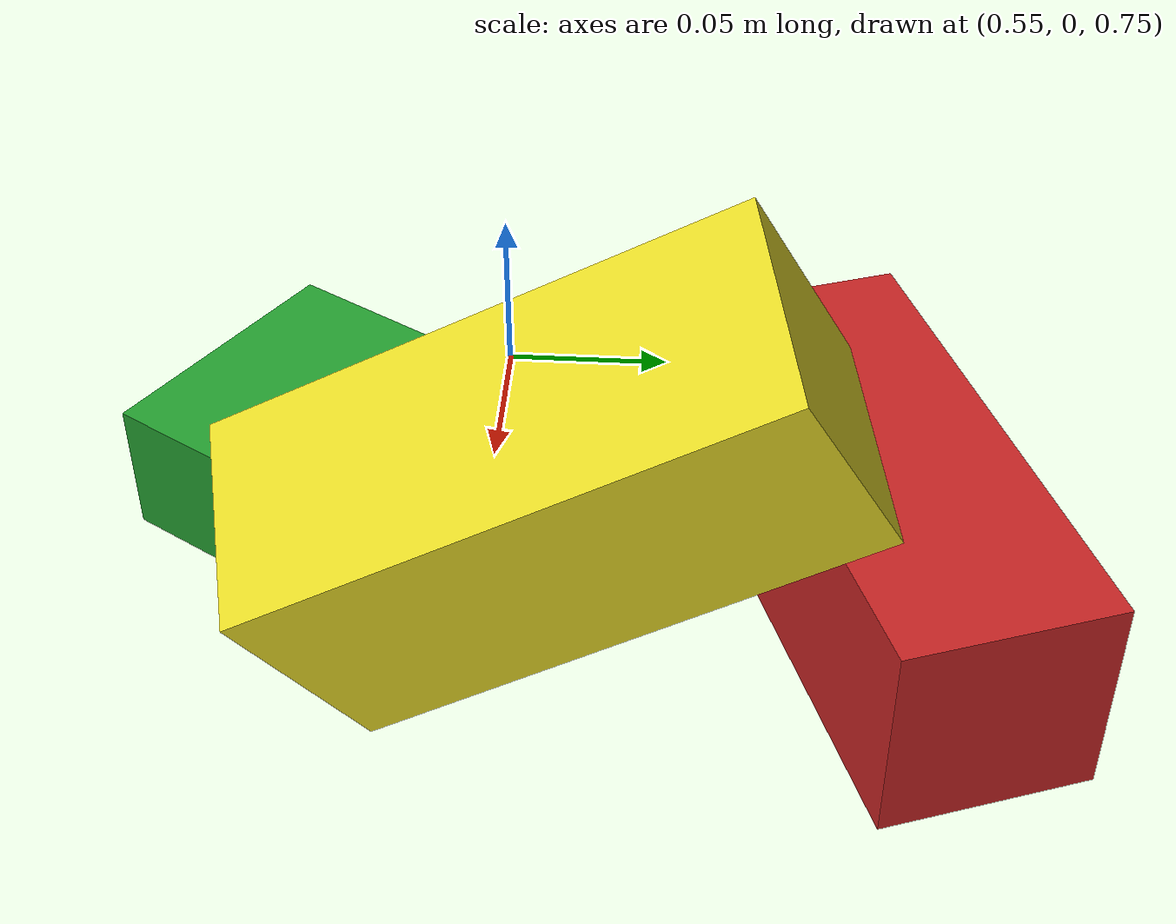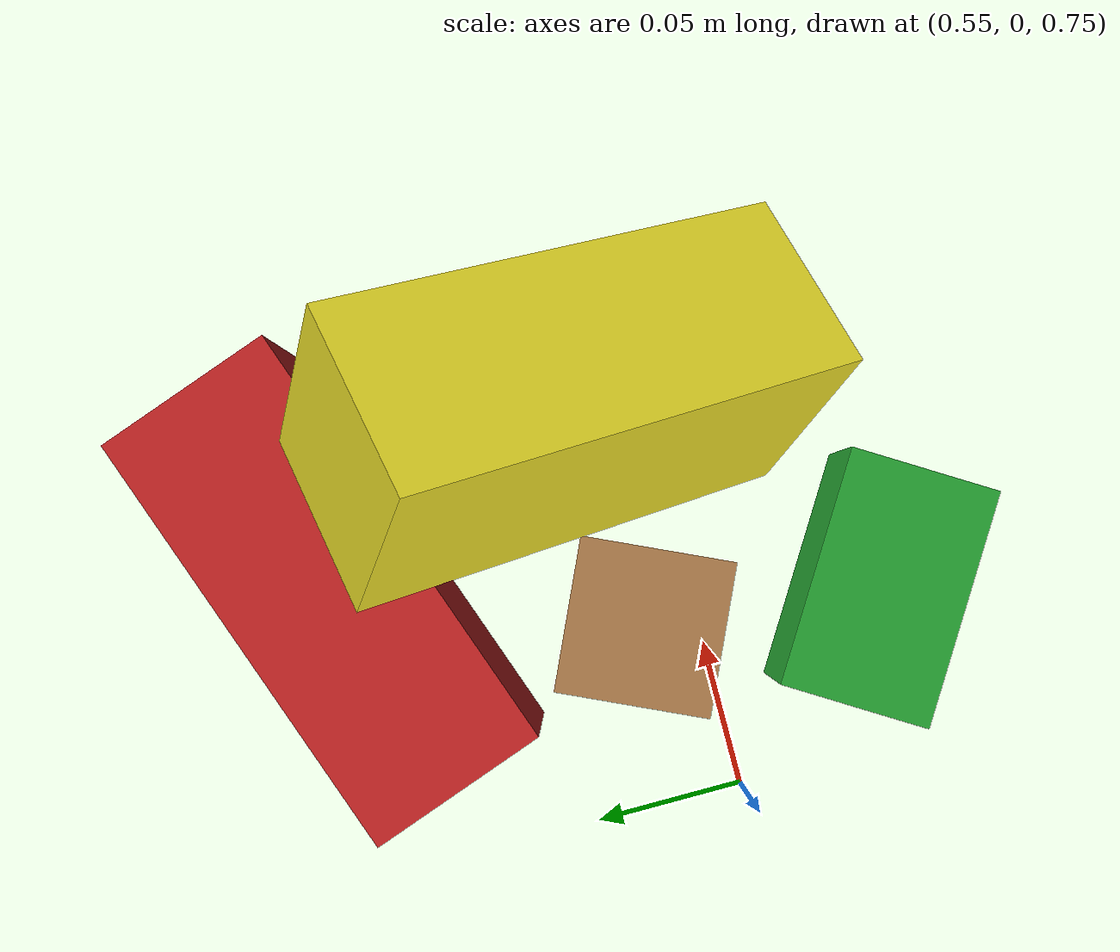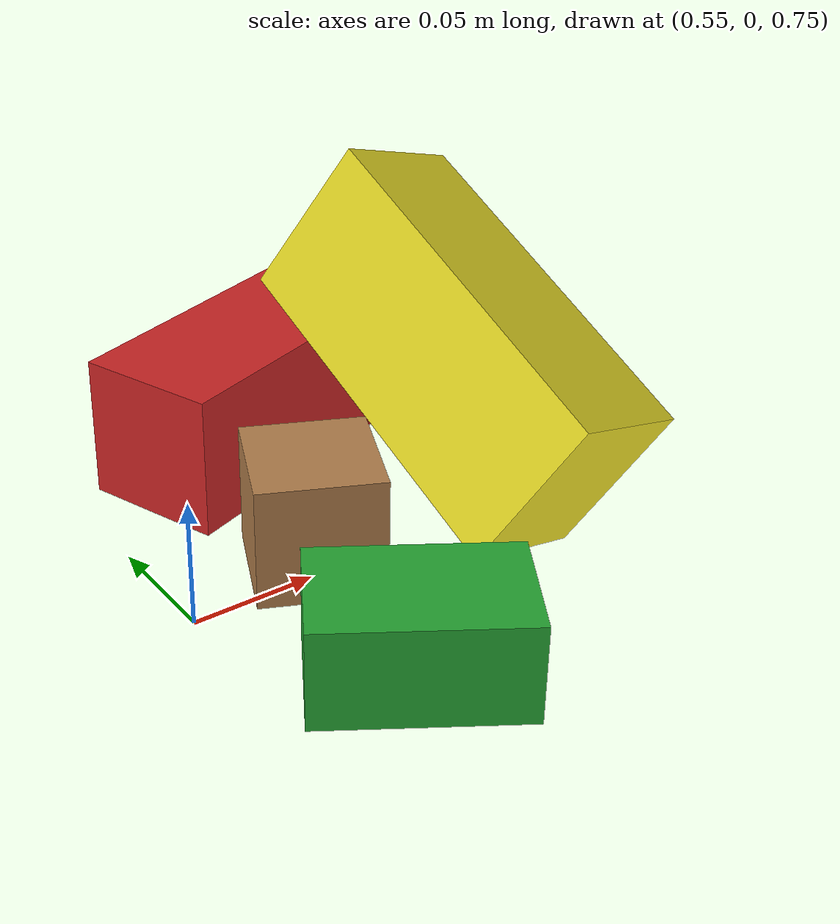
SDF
<sdf version="1.4">
 <world name="default">
  <light name="sun" type="directional">
   <pose>0 0 10 0 -0 0</pose>
   <diffuse>0.8 0.8 0.8 1</diffuse>
   <specular>0.2 0.2 0.2 1</specular>
   <attenuation>
    <range>1000</range>
    <constant>0.9</constant>
    <linear>0.01</linear>
    <quadratic>0.001</quadratic>
   </attenuation>
   <direction>-0.5 0.1 -0.9</direction>
  </light>
  <scene><shadows>0</shadows><ambient>0.4 0.4 0.4 1</ambient><background>0.7 0.7 0.7 1</background></scene>
  <model name="ground_plane">
   <static>1</static>
   <link name="link">
    <collision name="collision">
     <geometry><plane><normal>0 0 1</normal><size>100 100</size></plane></geometry>
     <surface><friction><ode><mu>100</mu><mu2>50</mu2></ode></friction></surface>
    </collision>
    <visual name="visual">
     <cast_shadows>0</cast_shadows>
     <geometry><plane><normal>0 0 1</normal><size>100 100</size></plane></geometry>
     <material>
      <script><uri>file://media/materials/scripts/gazebo.material</uri><name>Gazebo/Grey</name></script>
     </material>
    </visual>
    <velocity_decay><linear>0</linear><angular>0</angular></velocity_decay>
   </link>
  </model>
  <physics type="ode">
   <max_step_size>0.001</max_step_size>
   <real_time_factor>1</real_time_factor>
   <real_time_update_rate>1000</real_time_update_rate>
   <gravity>0 0 -9.8</gravity>
  </physics>
  <spherical_coordinates>
   <surface_model>EARTH_WGS84</surface_model>
   <latitude_deg>0</latitude_deg>
   <longitude_deg>0</longitude_deg>
   <elevation>0</elevation>
   <heading_deg>0</heading_deg>
  </spherical_coordinates>
  <model name="wood_cube_5cm">
   <link name="link">
    <pose>0 0 0.05 0 -0 0</pose>
    <inertial>
     <mass>0.01</mass>
     <inertia>
      <ixx>0.000101167</ixx>
      <ixy>0</ixy>
      <ixz>0</ixz>
      <iyy>6.1167e-05</iyy>
      <iyz>0</iyz>
      <izz>6.1167e-05</izz>
     </inertia>
    </inertial>
    <collision name="collision">
     <geometry><box><size>0.05 0.05 0.05</size></box></geometry>
     <surface><contact><ode><max_vel>0.1</max_vel><min_depth>0.001</min_depth></ode></contact></surface>
    </collision>
    <visual name="visual">
     <geometry><box><size>0.05 0.05 0.05</size></box></geometry>
     <material>
      <script><uri>file://media/materials/scripts/gazebo.material</uri><name>Gazebo/Wood</name></script>
     </material>
    </visual>
    <velocity_decay><linear>0</linear><angular>0</angular></velocity_decay>
   </link>
   <pose>0.613175 0.018667 0.714741 -0.001864 -0.002947 -0.430856</pose>
   <static>0</static>
  </model>
  <model name="rectangle_green">
   <link name="link">
    <pose>0 0 0.05 0 -0 0</pose>
    <inertial>
     <mass>0.01</mass>
     <inertia>
      <ixx>0.000101167</ixx>
      <ixy>0</ixy>
      <ixz>0</ixz>
      <iyy>6.1167e-05</iyy>
      <iyz>0</iyz>
      <izz>6.1167e-05</izz>
     </inertia>
    </inertial>
    <collision name="collision">
     <geometry><box><size>0.05 0.08 0.04</size></box></geometry>
     <surface><contact><ode><max_vel>0.1</max_vel><min_depth>0.001</min_depth></ode></contact></surface>
    </collision>
    <visual name="visual">
     <geometry><box><size>0.05 0.08 0.04</size></box></geometry>
     <material>
      <script><uri>file://media/materials/scripts/gazebo.material</uri><name>Gazebo/Green</name></script>
     </material>
    </visual>
    <velocity_decay><linear>0</linear><angular>0</angular></velocity_decay>
   </link>
   <pose>0.604225 -0.060938 0.709984 -4.2e-05 7.3e-05 1.01766</pose>
   <static>0</static>
  </model>
  <model name="wood_rectangle">
   <link name="link">
    <pose>0 0 0.05 0 -0 0</pose>
    <inertial>
     <mass>0.01</mass>
     <inertia>
      <ixx>0.000101167</ixx>
      <ixy>0</ixy>
      <ixz>0</ixz>
      <iyy>6.1167e-05</iyy>
      <iyz>0</iyz>
      <izz>6.1167e-05</izz>
     </inertia>
    </inertial>
    <collision name="collision">
     <geometry><box><size>0.06 0.15 0.06</size></box></geometry>
     <surface><contact><ode><max_vel>0.1</max_vel><min_depth>0.001</min_depth></ode></contact></surface>
    </collision>
    <visual name="visual">
     <geometry><box><size>0.06 0.15 0.06</size></box></geometry>
     <material>
      <script><uri>file://media/materials/scripts/gazebo.material</uri><name>Gazebo/Red</name></script>
     </material>
    </visual>
    <velocity_decay><linear>0</linear><angular>0</angular></velocity_decay>
   </link>
   <pose>0.650203 0.113007 0.719794 -9.1e-05 -0.0002 1.91328</pose>
   <static>0</static>
  </model>
  <model name="wood_cube_10cm">
   <link name="link">
    <pose>0 0 0.05 0 -0 0</pose>
    <inertial>
     <mass>0.01</mass>
     <inertia>
      <ixx>0.000101167</ixx>
      <ixy>0</ixy>
      <ixz>0</ixz>
      <iyy>6.1167e-05</iyy>
      <iyz>0</iyz>
      <izz>6.1167e-05</izz>
     </inertia>
    </inertial>
    <collision name="collision">
     <geometry><box><size>0.06 0.15 0.07</size></box></geometry>
     <surface><contact><ode><max_vel>0.1</max_vel><min_depth>0.001</min_depth></ode></contact></surface>
    </collision>
    <visual name="visual">
     <geometry><box><size>0.06 0.15 0.07</size></box></geometry>
     <material>
      <script><uri>file://media/materials/scripts/gazebo.material</uri><name>Gazebo/Yellow</name></script>
     </material>
    </visual>
    <velocity_decay><linear>0</linear><angular>0</angular></velocity_decay>
   </link>
   <pose>0.703655 0.004807 0.854049 2.65921 -0.297533 -2.92407</pose>
   <static>0</static>
  </model>
 </world>
</sdf>
